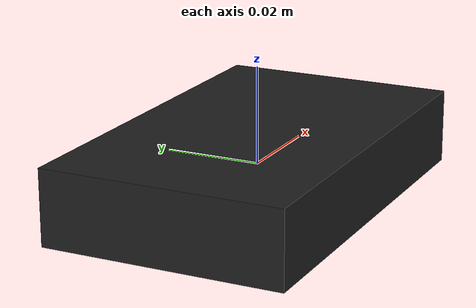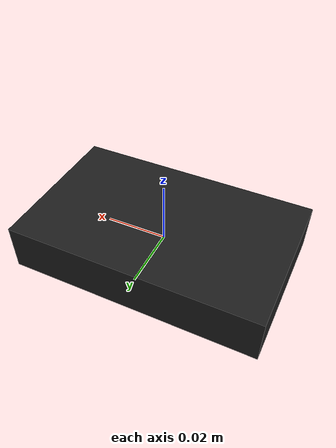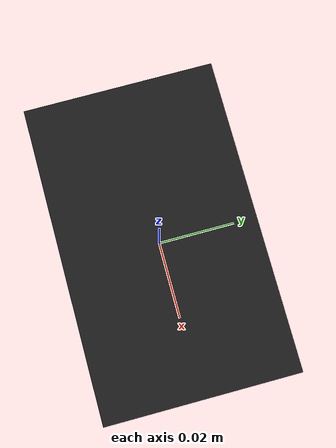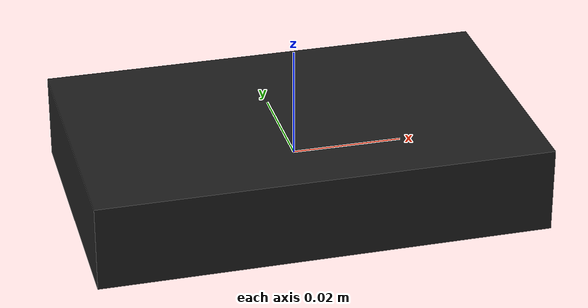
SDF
<?xml version="1.0" ?>
<sdf version="1.5">

  <model name="pixhawk">

    <link name="link">

      <inertial>
        <mass>0.038</mass>
        <inertia>
          <ixx>2.8899759404666665e-05</ixx>
          <iyy>2.1819023843999995e-05</iyy>
          <izz>8.616093260666668e-06</izz>
        </inertia>
      </inertial>

      <visual name="visual">
        <geometry>
          <box>
            <size>0.081534 0.049784 0.01557</size>
          </box>
        </geometry>
        <material>
            <script>
              <uri>file://media/materials/scripts/gazebo.material</uri>
              <name>Gazebo/FlatBlack</name>
            </script>
        </material>
      </visual>

      <collision name="collision">
        <geometry>
          <box>
            <size>0.081534 0.049784 0.01557</size>
          </box>
        </geometry>
      </collision>

      <sensor name='mpu-6000' type='imu'>
        <always_on>true</always_on>
        <update_rate>300</update_rate>
        <imu>
          <angular_velocity>
            <x>
              <noise type="gaussian">
               <mean>0</mean>
               <stddev>0.0002</stddev>
               <bias_mean>7.5e-06</bias_mean>
               <bias_stddev>8e-07</bias_stddev>
              </noise>
            </x>
            <y>
              <noise type="gaussian">
               <mean>0</mean>
               <stddev>0.0002</stddev>
               <bias_mean>7.5e-06</bias_mean>
               <bias_stddev>8e-07</bias_stddev>
              </noise>
            </y>
            <z>
              <noise type="gaussian">
               <mean>0</mean>
               <stddev>0.0002</stddev>
               <bias_mean>7.5e-06</bias_mean>
               <bias_stddev>8e-07</bias_stddev>
              </noise>
            </z>
          </angular_velocity>

          <linear_acceleration>
            <x>
              <noise type="gaussian">
                <mean>0</mean>
                <stddev>0.017</stddev>
                <bias_mean>0.1</bias_mean>
                <bias_stddev>0.001</bias_stddev>
              </noise>
            </x>
            <y>
              <noise type="gaussian">
                <mean>0</mean>
                <stddev>0.017</stddev>
                <bias_mean>0.1</bias_mean>
                <bias_stddev>0.001</bias_stddev>
              </noise>
            </y>
            <z>
              <noise type="gaussian">
                <mean>0</mean>
                <stddev>0.017</stddev>
                <bias_mean>0.1</bias_mean>
                <bias_stddev>0.001</bias_stddev>
              </noise>
            </z>
          </linear_acceleration>
        </imu>
      </sensor>

      <sensor name='ms5611' type='altimeter'>
        <pose>0 0 0 0 0 0</pose>
        <always_on>true</always_on>
        <update_rate>10</update_rate>
        <altimeter>
          <vertical_position>
            <noise type="gaussian">
              <mean>0.0</mean>
              <stddev>1.0</stddev>
              <bias_mean>0.0</bias_mean>
              <bias_stddev>1.0</bias_stddev>
            </noise>
          </vertical_position>
          <vertical_velocity>
            <noise type="gaussian">
              <mean>0.0</mean>
              <stddev>1.0</stddev>
              <bias_mean>0.0</bias_mean>
              <bias_stddev>1.0</bias_stddev>
            </noise>
          </vertical_velocity>
        </altimeter>
      </sensor>

      <sensor name="LSM303D" type="magnetometer">
        <always_on>true</always_on>
        <update_rate>50</update_rate>
        <magnetometer>
          <x>
            <noise type="gaussian">
             <mean>0</mean>
             <stddev>0.0002</stddev>
             <bias_mean>7.5e-06</bias_mean>
             <bias_stddev>8e-07</bias_stddev>
            </noise>
          </x>
          <y>
            <noise type="gaussian">
             <mean>0</mean>
             <stddev>0.0002</stddev>
             <bias_mean>7.5e-06</bias_mean>
             <bias_stddev>8e-07</bias_stddev>
            </noise>
          </y>
          <z>
            <noise type="gaussian">
             <mean>0</mean>
             <stddev>0.0002</stddev>
             <bias_mean>7.5e-06</bias_mean>
             <bias_stddev>8e-07</bias_stddev>
            </noise>
          </z>
        </magnetometer>

      </sensor>

    </link>

  </model>

</sdf>

<!-- vim: set et ft=xml fenc=utf-8 ff=unix sts=0 sw=2 ts=2 : -->
